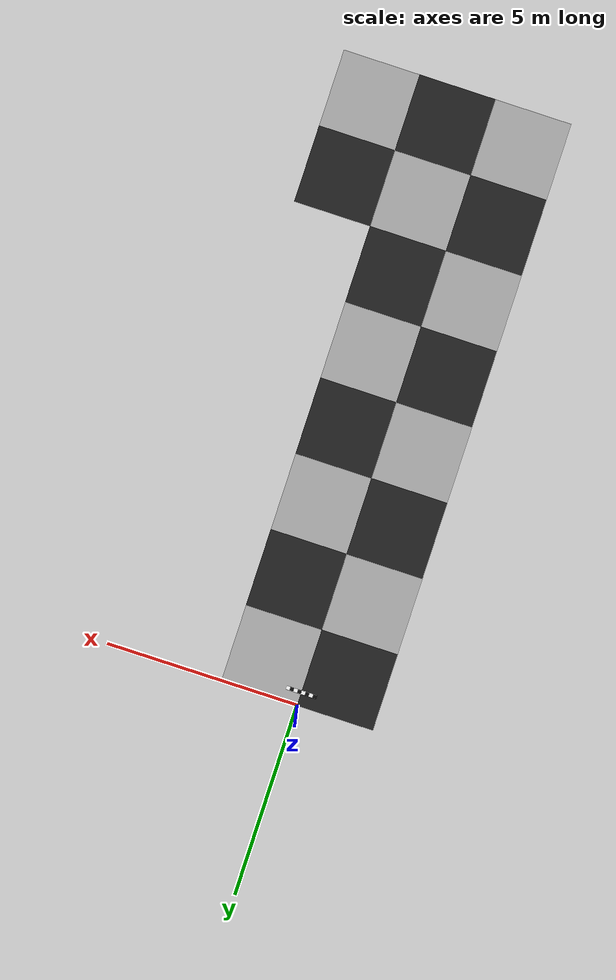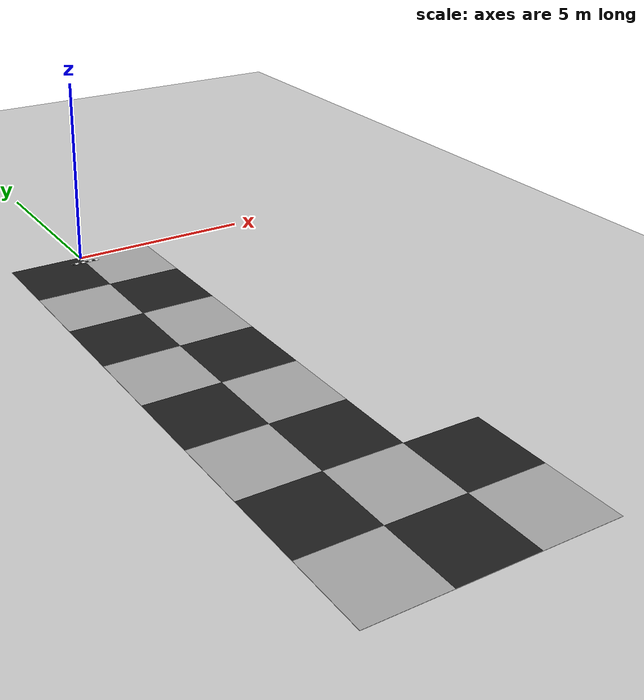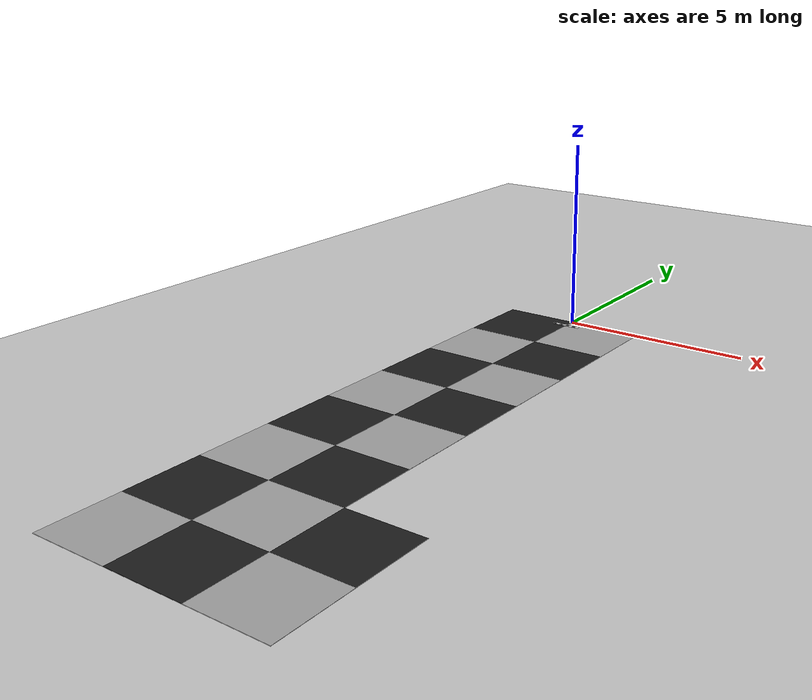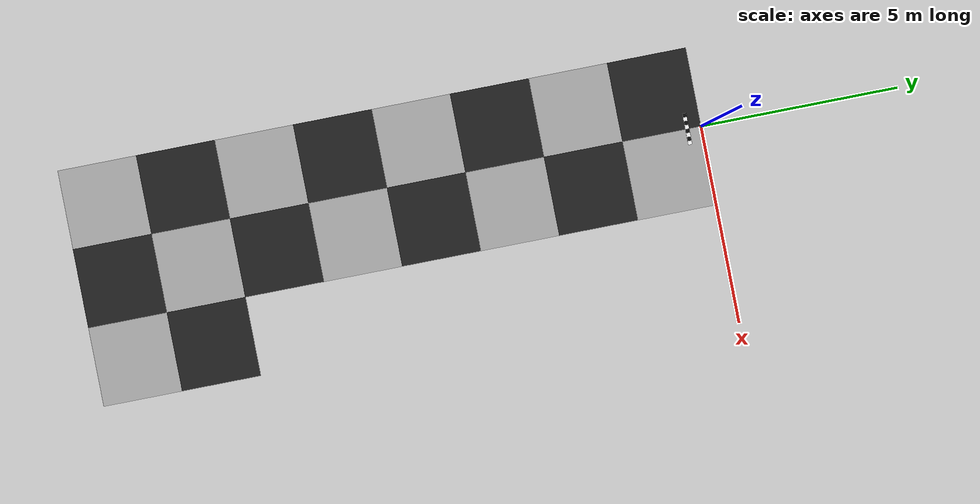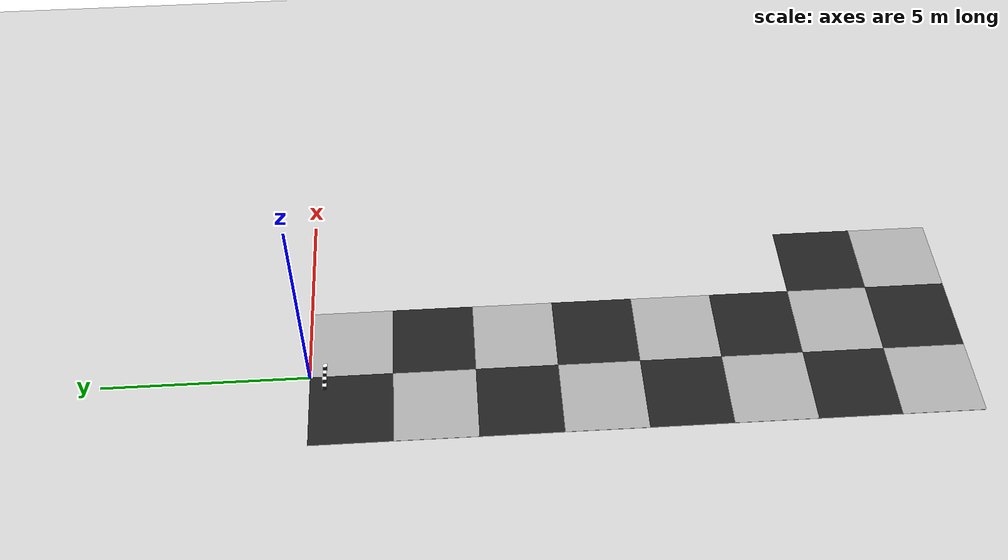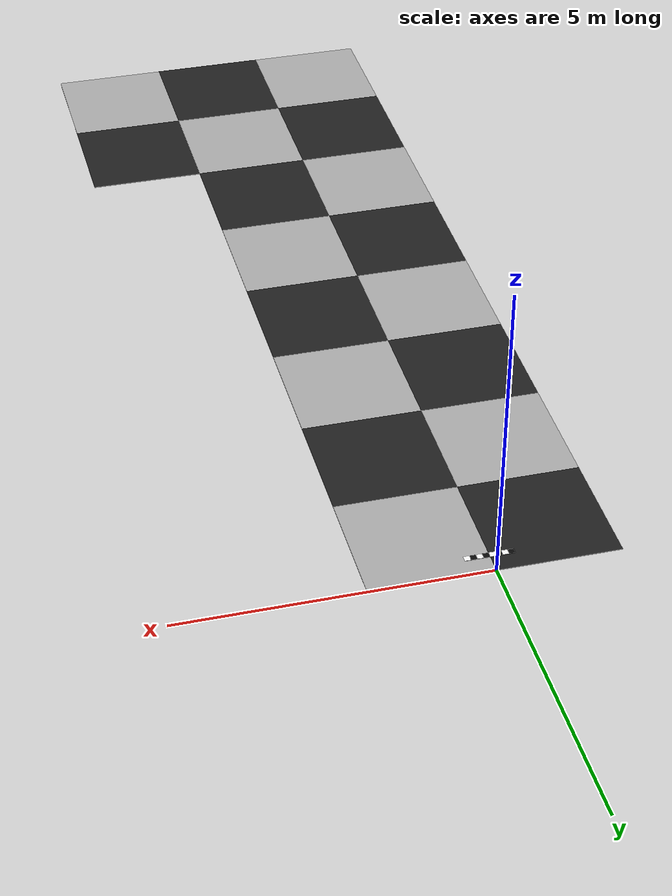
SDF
<sdf version="1.9">
 <world name="v6_optical_flow">
  <model name="ground_plane">
   <static>true</static>
   <link name="link">
    <collision name="collision">
     <geometry><plane><normal>0 0 1</normal><size>1 1</size></plane></geometry>
    </collision>
    <visual name="visual">
     <geometry><plane><normal>0 0 1</normal><size>500 500</size></plane></geometry>
     <material>
      <ambient>0.8 0.8 0.8 1</ambient>
      <diffuse>0.8 0.8 0.8 1</diffuse>
      <specular>0.1 0.1 0.1 1</specular>
     </material>
    </visual>
   </link>
  </model>
  <model name="optical_flow_floor">
   <static>true</static>
   <link name="tile_-1_-8">
    <pose>-1 -15 0.006 0 0 0</pose>
    <visual name="visual">
     <geometry><box><size>2 2 0.01</size></box></geometry>
     <material>
      <ambient>0.65 0.65 0.65 1</ambient>
      <diffuse>0.65 0.65 0.65 1</diffuse>
      <specular>0 0 0 1</specular>
     </material>
    </visual>
   </link>
   <link name="tile_-1_-7">
    <pose>-1 -13 0.006 0 0 0</pose>
    <visual name="visual">
     <geometry><box><size>2 2 0.01</size></box></geometry>
     <material>
      <ambient>0.12 0.12 0.12 1</ambient>
      <diffuse>0.12 0.12 0.12 1</diffuse>
      <specular>0 0 0 1</specular>
     </material>
    </visual>
   </link>
   <link name="tile_-1_-6">
    <pose>-1 -11 0.006 0 0 0</pose>
    <visual name="visual">
     <geometry><box><size>2 2 0.01</size></box></geometry>
     <material>
      <ambient>0.65 0.65 0.65 1</ambient>
      <diffuse>0.65 0.65 0.65 1</diffuse>
      <specular>0 0 0 1</specular>
     </material>
    </visual>
   </link>
   <link name="tile_-1_-5">
    <pose>-1 -9 0.006 0 0 0</pose>
    <visual name="visual">
     <geometry><box><size>2 2 0.01</size></box></geometry>
     <material>
      <ambient>0.12 0.12 0.12 1</ambient>
      <diffuse>0.12 0.12 0.12 1</diffuse>
      <specular>0 0 0 1</specular>
     </material>
    </visual>
   </link>
   <link name="tile_-1_-4">
    <pose>-1 -7 0.006 0 0 0</pose>
    <visual name="visual">
     <geometry><box><size>2 2 0.01</size></box></geometry>
     <material>
      <ambient>0.65 0.65 0.65 1</ambient>
      <diffuse>0.65 0.65 0.65 1</diffuse>
      <specular>0 0 0 1</specular>
     </material>
    </visual>
   </link>
   <link name="tile_-1_-3">
    <pose>-1 -5 0.006 0 0 0</pose>
    <visual name="visual">
     <geometry><box><size>2 2 0.01</size></box></geometry>
     <material>
      <ambient>0.12 0.12 0.12 1</ambient>
      <diffuse>0.12 0.12 0.12 1</diffuse>
      <specular>0 0 0 1</specular>
     </material>
    </visual>
   </link>
   <link name="tile_-1_-2">
    <pose>-1 -3 0.006 0 0 0</pose>
    <visual name="visual">
     <geometry><box><size>2 2 0.01</size></box></geometry>
     <material>
      <ambient>0.65 0.65 0.65 1</ambient>
      <diffuse>0.65 0.65 0.65 1</diffuse>
      <specular>0 0 0 1</specular>
     </material>
    </visual>
   </link>
   <link name="tile_-1_-1">
    <pose>-1 -1 0.006 0 0 0</pose>
    <visual name="visual">
     <geometry><box><size>2 2 0.01</size></box></geometry>
     <material>
      <ambient>0.12 0.12 0.12 1</ambient>
      <diffuse>0.12 0.12 0.12 1</diffuse>
      <specular>0 0 0 1</specular>
     </material>
    </visual>
   </link>
   <link name="tile_0_-8">
    <pose>1 -15 0.006 0 0 0</pose>
    <visual name="visual">
     <geometry><box><size>2 2 0.01</size></box></geometry>
     <material>
      <ambient>0.12 0.12 0.12 1</ambient>
      <diffuse>0.12 0.12 0.12 1</diffuse>
      <specular>0 0 0 1</specular>
     </material>
    </visual>
   </link>
   <link name="tile_0_-7">
    <pose>1 -13 0.006 0 0 0</pose>
    <visual name="visual">
     <geometry><box><size>2 2 0.01</size></box></geometry>
     <material>
      <ambient>0.65 0.65 0.65 1</ambient>
      <diffuse>0.65 0.65 0.65 1</diffuse>
      <specular>0 0 0 1</specular>
     </material>
    </visual>
   </link>
   <link name="tile_0_-6">
    <pose>1 -11 0.006 0 0 0</pose>
    <visual name="visual">
     <geometry><box><size>2 2 0.01</size></box></geometry>
     <material>
      <ambient>0.12 0.12 0.12 1</ambient>
      <diffuse>0.12 0.12 0.12 1</diffuse>
      <specular>0 0 0 1</specular>
     </material>
    </visual>
   </link>
   <link name="tile_0_-5">
    <pose>1 -9 0.006 0 0 0</pose>
    <visual name="visual">
     <geometry><box><size>2 2 0.01</size></box></geometry>
     <material>
      <ambient>0.65 0.65 0.65 1</ambient>
      <diffuse>0.65 0.65 0.65 1</diffuse>
      <specular>0 0 0 1</specular>
     </material>
    </visual>
   </link>
   <link name="tile_0_-4">
    <pose>1 -7 0.006 0 0 0</pose>
    <visual name="visual">
     <geometry><box><size>2 2 0.01</size></box></geometry>
     <material>
      <ambient>0.12 0.12 0.12 1</ambient>
      <diffuse>0.12 0.12 0.12 1</diffuse>
      <specular>0 0 0 1</specular>
     </material>
    </visual>
   </link>
   <link name="tile_0_-3">
    <pose>1 -5 0.006 0 0 0</pose>
    <visual name="visual">
     <geometry><box><size>2 2 0.01</size></box></geometry>
     <material>
      <ambient>0.65 0.65 0.65 1</ambient>
      <diffuse>0.65 0.65 0.65 1</diffuse>
      <specular>0 0 0 1</specular>
     </material>
    </visual>
   </link>
   <link name="tile_0_-2">
    <pose>1 -3 0.006 0 0 0</pose>
    <visual name="visual">
     <geometry><box><size>2 2 0.01</size></box></geometry>
     <material>
      <ambient>0.12 0.12 0.12 1</ambient>
      <diffuse>0.12 0.12 0.12 1</diffuse>
      <specular>0 0 0 1</specular>
     </material>
    </visual>
   </link>
   <link name="tile_0_-1">
    <pose>1 -1 0.006 0 0 0</pose>
    <visual name="visual">
     <geometry><box><size>2 2 0.01</size></box></geometry>
     <material>
      <ambient>0.65 0.65 0.65 1</ambient>
      <diffuse>0.65 0.65 0.65 1</diffuse>
      <specular>0 0 0 1</specular>
     </material>
    </visual>
   </link>
   <link name="tile_1_-8">
    <pose>3 -15 0.006 0 0 0</pose>
    <visual name="visual">
     <geometry><box><size>2 2 0.01</size></box></geometry>
     <material>
      <ambient>0.65 0.65 0.65 1</ambient>
      <diffuse>0.65 0.65 0.65 1</diffuse>
      <specular>0 0 0 1</specular>
     </material>
    </visual>
   </link>
   <link name="tile_1_-7">
    <pose>3 -13 0.006 0 0 0</pose>
    <visual name="visual">
     <geometry><box><size>2 2 0.01</size></box></geometry>
     <material>
      <ambient>0.12 0.12 0.12 1</ambient>
      <diffuse>0.12 0.12 0.12 1</diffuse>
      <specular>0 0 0 1</specular>
     </material>
    </visual>
   </link>
   <link name="fine_tile_-4_-4">
    <pose>-0.35000000000000003 -0.35000000000000003 0.012 0 0 0</pose>
    <visual name="visual">
     <geometry><box><size>0.1 0.1 0.01</size></box></geometry>
     <material>
      <ambient>0.03 0.03 0.03 1</ambient>
      <diffuse>0.03 0.03 0.03 1</diffuse>
      <specular>0 0 0 1</specular>
     </material>
    </visual>
   </link>
   <link name="fine_tile_-3_-4">
    <pose>-0.25 -0.35000000000000003 0.012 0 0 0</pose>
    <visual name="visual">
     <geometry><box><size>0.1 0.1 0.01</size></box></geometry>
     <material>
      <ambient>0.95 0.95 0.95 1</ambient>
      <diffuse>0.95 0.95 0.95 1</diffuse>
      <specular>0 0 0 1</specular>
     </material>
    </visual>
   </link>
   <link name="fine_tile_-2_-4">
    <pose>-0.15000000000000002 -0.35000000000000003 0.012 0 0 0</pose>
    <visual name="visual">
     <geometry><box><size>0.1 0.1 0.01</size></box></geometry>
     <material>
      <ambient>0.03 0.03 0.03 1</ambient>
      <diffuse>0.03 0.03 0.03 1</diffuse>
      <specular>0 0 0 1</specular>
     </material>
    </visual>
   </link>
   <link name="fine_tile_-1_-4">
    <pose>-0.05 -0.35000000000000003 0.012 0 0 0</pose>
    <visual name="visual">
     <geometry><box><size>0.1 0.1 0.01</size></box></geometry>
     <material>
      <ambient>0.95 0.95 0.95 1</ambient>
      <diffuse>0.95 0.95 0.95 1</diffuse>
      <specular>0 0 0 1</specular>
     </material>
    </visual>
   </link>
   <link name="fine_tile_0_-4">
    <pose>0.05 -0.35000000000000003 0.012 0 0 0</pose>
    <visual name="visual">
     <geometry><box><size>0.1 0.1 0.01</size></box></geometry>
     <material>
      <ambient>0.03 0.03 0.03 1</ambient>
      <diffuse>0.03 0.03 0.03 1</diffuse>
      <specular>0 0 0 1</specular>
     </material>
    </visual>
   </link>
   <link name="fine_tile_1_-4">
    <pose>0.15000000000000002 -0.35000000000000003 0.012 0 0 0</pose>
    <visual name="visual">
     <geometry><box><size>0.1 0.1 0.01</size></box></geometry>
     <material>
      <ambient>0.95 0.95 0.95 1</ambient>
      <diffuse>0.95 0.95 0.95 1</diffuse>
      <specular>0 0 0 1</specular>
     </material>
    </visual>
   </link>
   <link name="fine_tile_2_-4">
    <pose>0.25 -0.35000000000000003 0.012 0 0 0</pose>
    <visual name="visual">
     <geometry><box><size>0.1 0.1 0.01</size></box></geometry>
     <material>
      <ambient>0.03 0.03 0.03 1</ambient>
      <diffuse>0.03 0.03 0.03 1</diffuse>
      <specular>0 0 0 1</specular>
     </material>
    </visual>
   </link>
   <link name="fine_tile_3_-4">
    <pose>0.35000000000000003 -0.35000000000000003 0.012 0 0 0</pose>
    <visual name="visual">
     <geometry><box><size>0.1 0.1 0.01</size></box></geometry>
     <material>
      <ambient>0.95 0.95 0.95 1</ambient>
      <diffuse>0.95 0.95 0.95 1</diffuse>
      <specular>0 0 0 1</specular>
     </material>
    </visual>
   </link>
  </model>
 </world>
</sdf>
